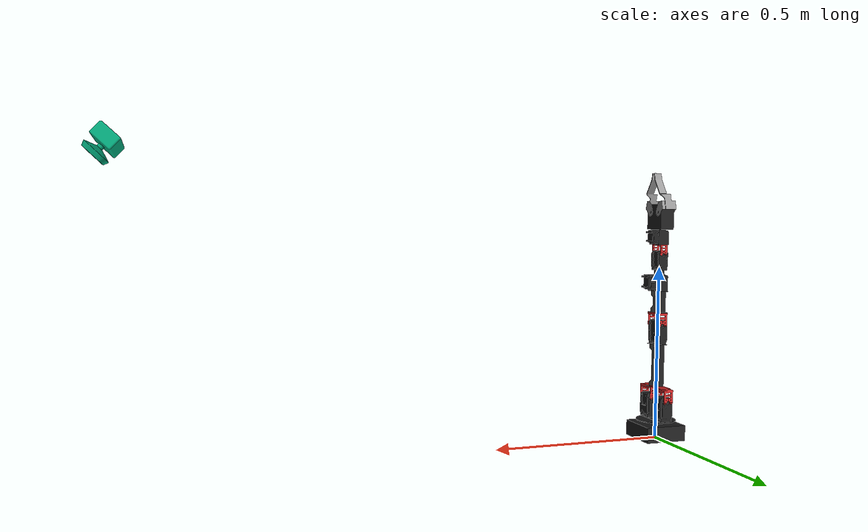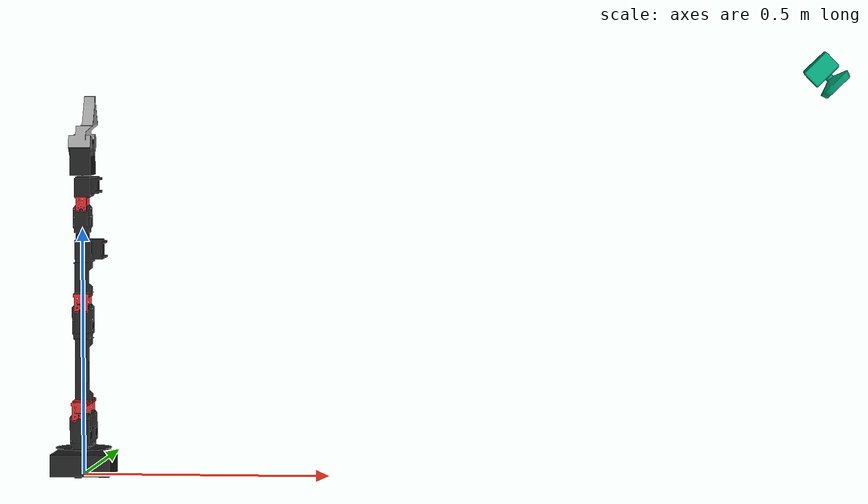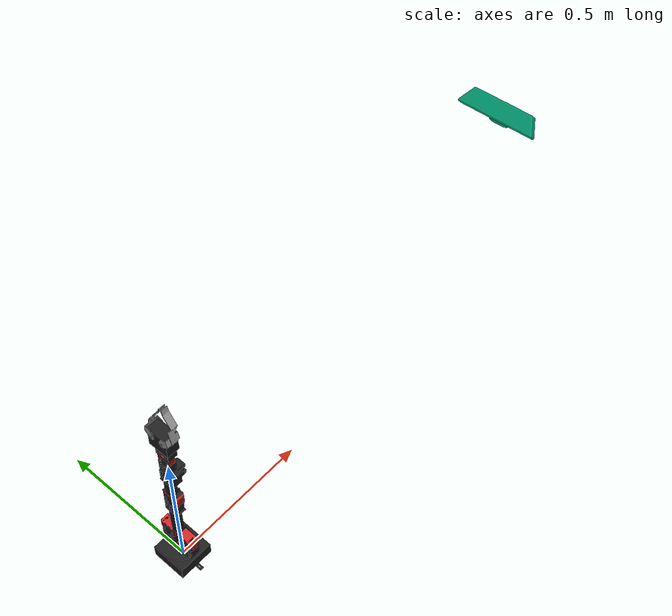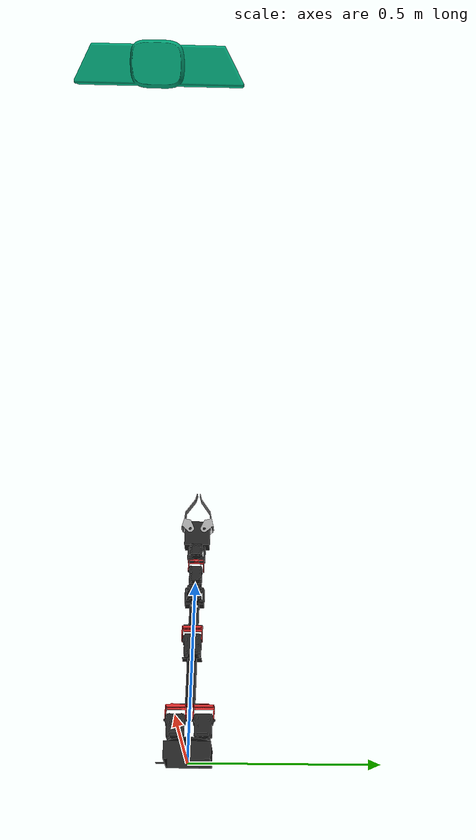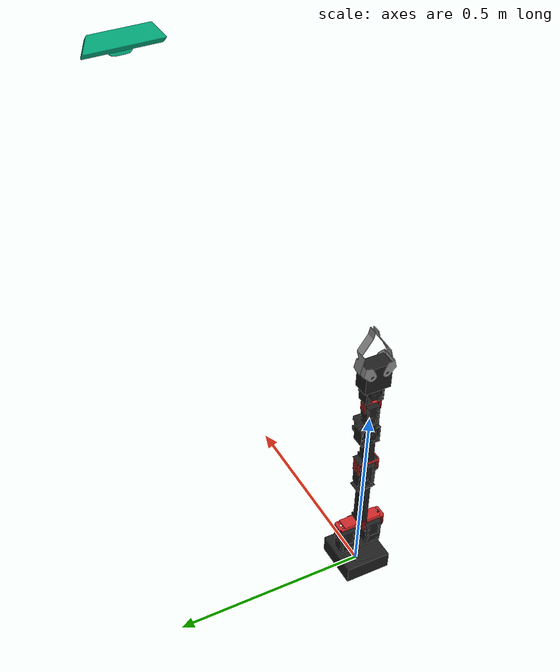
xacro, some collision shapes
<?xml version="1.0" ?>
<robot name="crustcrawler" xmlns:xacro="http://www.ros.org/wiki/xacro">

  <!-- kinect with all frames as defined in turtlebot -->
   <joint name="camera_rgb_joint" type="fixed">
      <origin xyz="0 0.0 0" rpy="0 0 0"/>
      <parent link="camera_link"/>
      <child link="camera_rgb_frame" />
  </joint>
  <link name="camera_rgb_frame"/>
  <joint name="camera_rgb_optical_joint" type="fixed">
      <origin xyz="0 0 0" rpy="-1.5707963267948966 0 -1.5707963267948966" />
      <parent link="camera_rgb_frame" />
      <child link="camera_rgb_optical_frame" />
  </joint>
  <link name="camera_rgb_optical_frame"/>
  <joint name="kinect_joint" type="fixed">
      <origin xyz="1.5 0.0 0.813" rpy="0 0.77 3.14"/>
      <parent link="base"/>
      <child link="camera_link"/>
  </joint>
  <link name="camera_link">
      <visual>
       <origin xyz="0 0 0" rpy="0 0 0"/>
        <geometry>
         <mesh filename="package://crustcrawler_description/meshes/sensors/kinect.dae"/>
        </geometry>
      </visual>
      <collision>
        <origin xyz="0 0 0" rpy="0 0 0"/>
        <geometry>
          <box size="0.07271 0.27794 0.073"/>
        </geometry>
      </collision>
      <inertial>
        <mass value="0.564" />
        <origin xyz="0 0 0" />
        <inertia ixx="0.003881243" ixy="0.0" ixz="0.0"
                 iyy="0.000498940" iyz="0.0"
                 izz="0.003879257" />
      </inertial>
  </link>
  <joint name="camera_depth_joint" type="fixed">
    <origin xyz="0 0.0 0" rpy="0 0 0" />
    <parent link="camera_rgb_frame" />
    <child link="camera_depth_frame" />
  </joint>
  <link name="camera_depth_frame"/>
  <joint name="camera_depth_optical_joint" type="fixed">
    <origin xyz="0 0 0" rpy="-1.5707963267948966 0 -1.5707963267948966" />
    <parent link="camera_depth_frame" />
    <child link="camera_depth_optical_frame" />
  </joint>
  <link name="camera_depth_optical_frame"/>

<!-- Microsoft Kinect / ASUS Xtion PRO Live for simulation -->
    <gazebo reference="camera_link">
      <sensor type="depth" name="camera">
        <always_on>true</always_on>
        <update_rate>20.0</update_rate>
        <camera>
          <horizontal_fov>1.05</horizontal_fov>
          <image>
            <format>B8G8R8</format>
            <width>640</width>
            <height>480</height>
          </image>
          <clip>
            <near>0.05</near>
            <far>8.0</far>
          </clip>
        </camera>
        <plugin name="kinect_camera_controller" filename="libgazebo_ros_openni_kinect.so">
          <baseline>0.2</baseline>
          <alwaysOn>true</alwaysOn>
          <updateRate>10</updateRate>
          <cameraName>camera</cameraName>
          <imageTopicName>rgb/image_rect_color</imageTopicName>
          <depthImageTopicName>depth_registered/sw_registered/image_rect</depthImageTopicName>
          <pointCloudTopicName>depth_registered/sw_registered/points</pointCloudTopicName>
          <cameraInfoTopicName>rgb/camera_info</cameraInfoTopicName>
          <depthImageCameraInfoTopicName>depth_registered/sw_registered/camera_info</depthImageCameraInfoTopicName>
          <frameName>camera_depth_optical_frame</frameName>
          <pointCloudCutoff>0.5</pointCloudCutoff>
          <distortionK1>0.00000001</distortionK1>
          <distortionK2>0.00000001</distortionK2>
          <distortionK3>0.00000001</distortionK3>
          <distortionT1>0.00000001</distortionT1>
          <distortionT2>0.00000001</distortionT2>
          <CxPrime>0</CxPrime>
          <Cx>0</Cx>
          <Cy>0</Cy>
          <focalLength>0</focalLength>
          <hackBaseline>0</hackBaseline>
        </plugin>
      </sensor>
    </gazebo>

  <!-- Crustcrawler Base URDF -->
  <xacro:include filename="$(find crustcrawler_description)/urdf/crustcrawler_arm_test_2.xacro"/>

</robot>

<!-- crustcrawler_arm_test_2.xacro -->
<robot name="crustcrawler" xmlns:xacro="http://www.ros.org/wiki/xacro">

	  <!-- Constants for robot dimensions -->
	  <xacro:property name="PI" value="3.1415926535897931"/>
	  <xacro:property name="mass_1" value="0.125" />
	  <xacro:property name="mass_2" value="0.425" />
	  <xacro:property name="mass_3" value="0.01" />
	  <xacro:property name="mass_4" value="0.037" />
	  <xacro:property name="mass_5" value="0.196" />
	  <xacro:property name="mass_6" value="0.023" />
	  <xacro:property name="mass_7" value="0.187" />
	  <xacro:property name="mass_8" value="0.096" />
	  <xacro:property name="mass_9" value="0.128" />
	  <xacro:property name="mass_10" value="0.15" />
	  <xacro:property name="mass_11" value="0.02" />

	  <xacro:property name="width_1" value="0.14" />
	  <xacro:property name="width_2" value="0.03" />
	  <xacro:property name="width_3" value="0.03" />
	  <xacro:property name="width_4" value="0.032" />
	  <xacro:property name="width_5" value="0.028" />
	  <xacro:property name="width_6" value="0.03" />
	  <xacro:property name="width_7" value="0.05" />
	  <xacro:property name="width_8" value="0.024" />
	  <xacro:property name="width_9" value="0.05" />
	  <xacro:property name="width_10" value="0.036" />
	  <xacro:property name="width_11" value="0.04" />

	  <xacro:property name="length_2" value="0.115" />
	  <xacro:property name="length_3" value="0.13" />
	  <xacro:property name="length_4" value="0.05" />
	  <xacro:property name="length_5" value="0.045" />
	  <xacro:property name="length_6" value="0.05" />
	  <xacro:property name="length_7" value="0.06" />
	  <xacro:property name="length_8" value="0.04" />
	  <xacro:property name="length_9" value="0.05" />
	  <xacro:property name="length_10" value="0.06" />
	  <xacro:property name="length_11" value="0.044" />

	  <xacro:property name="height_1" value="0.06" />
	  <xacro:property name="height_2" value="0.07" />
	  <xacro:property name="height_3" value="0.03" />
	  <xacro:property name="height_4" value="0.126" />
	  <xacro:property name="height_5" value="0.063" />
	  <xacro:property name="height_6" value="0.063" />
	  <xacro:property name="height_7" value="0.048" />
	  <xacro:property name="height_8" value="0.054" />
	  <xacro:property name="height_9" value="0.055" />
	  <xacro:property name="height_10" value="0.053" />
	  <xacro:property name="height_11" value="0.11" />

	    <xacro:include filename="$(find crustcrawler_description)/urdf/materials.urdf.xacro" />
	    <xacro:include filename="$(find crustcrawler_description)/urdf/crustcrawler.gazebo" />

	        <!-- ****** JOINT DEFINITIONS ****** -->
	        <link name="world"/>
		<link name="base"/>
	        <link name="the_gripper">
	      <inertial>
	        <origin rpy="0 0 0" xyz="0 0 0"/>
	        <mass value="0.0001"/>
	        <inertia ixx="0" ixy="0" ixz="0" iyy="0" iyz="0" izz="0.0"/>
	      </inertial>
	    </link>

	        <!-- Arm's base joint -->
	        <joint name="base_joint" type="fixed">
	            <origin xyz="0 0 0" rpy="0 0 0" />
	            <parent link="world"/>
	            <child link="base"/>
	        </joint>

	        <joint name="arm_base_joint" type="fixed">
	            <parent link="base"/>
	            <child link="link_joint_1"/>
	        </joint>

	        <!-- joint 1 -->
	        <joint name="joint_1" type="revolute" >
	            <origin xyz="0 0 0.055" rpy="0 0 0" />
	            <parent link="link_joint_1" />
	            <child link="link_joint_2"/>

	            <axis xyz="0 0 1"/>
	            <limit  lower="-1.8" upper="2.3" effort="6.0" velocity="2.0" />
	        </joint>

	        <!-- joint 2 -->
	        <joint name="joint_2" type="revolute" >
	            <origin xyz="0 -0.06 0.06" rpy="0 0 0" />
	            <parent link="link_joint_2" />
	            <child link="connector_1"/>

	            <axis xyz="0 1 0"/>
	            <limit  lower="-1.6" upper="1.6" effort="15" velocity="2.0" />
	        </joint>

	        <!-- Fixed joint between connector_1 and the first girder -->
	        <joint name="connector_1_girder_1_joint" type="fixed">
	            <origin xyz="-0.0153 0.06 0.036" rpy="0 0 0" />
	            <parent link="connector_1"/>
	            <child link="link_girder_1"/>
	        </joint>

	        <!-- Fixed joint between first girder joint_3 -->
	        <joint name="girder_1_joint_3_joint" type="fixed">
	            <origin xyz="0.0153 0 0.126" rpy="0 0 0" />
	            <parent link="link_girder_1"/>
	            <child link="link_joint_3"/>
	        </joint>

	        <!-- joint 3 -->
	        <joint name="joint_3" type="revolute" >
	            <origin xyz="0 -0.025 0.056" rpy="0 0 0" />
	            <parent link="link_joint_3" />
	            <child link="connector_2"/>

	            <axis xyz="0 -1 0"/>
	            <limit  lower="-1.9" upper="1.9" effort="8.4" velocity="2.0" />
	        </joint>

	        <!-- Fixed joint between connector_2 and link_girder_2 -->
	        <joint name="connector_2_girder_2_joint" type="fixed">
	            <origin xyz="-0.0153 0.025 0.036" rpy="0 0 0" />
	            <parent link="connector_2"/>
	            <child link="link_girder_2"/>
	        </joint>

	        <!-- Fixed joint between second girder joint_4 -->
	        <joint name="girder_2_joint_4_joint" type="fixed">
	            <origin xyz="0.0153 0 0.0635" rpy="0 0 0" />
	            <parent link="link_girder_2"/>
	            <child link="link_joint_4"/>
	        </joint>

	        <!-- joint 4 -->
	        <joint name="joint_4" type="revolute" >
	            <origin xyz="0 0 0.06" rpy="0 0 0" />
	            <parent link="link_joint_4" />
	            <child link="link_joint_5"/>

	            <axis xyz="0 0 1"/>
	            <limit  lower="-3.14" upper="3.14" effort="6.0" velocity="2.0" />
	        </joint>

	        <!-- joint 5 -->
	        <joint name="joint_5" type="revolute" >
	            <origin xyz="0 -0.025 0.044" rpy="0 0 0" />
	            <parent link="link_joint_5" />
	            <child link="connector_3"/>

	            <axis xyz="0 -1 0"/>
	            <limit  lower="-1.6" upper="1.6" effort="2.5" velocity="2.0" />
	        </joint>

	        <!-- Fixed joint between connector_3 and joint_6 -->
	        <joint name="connector_3_joint_6_joint" type="fixed">
	            <origin xyz="0 0.025 0.029" rpy="0 0 0" />
	            <parent link="connector_3"/>
	            <child link="link_joint_6"/>
	        </joint>

	        <!-- joint 6 -->
	        <joint name="joint_6" type="revolute" >
	            <origin xyz="0 0 0.053" rpy="0 0 0" />
	            <parent link="link_joint_6" />
	            <child link="link_gripper_base"/>

	            <axis xyz="0 0 1"/>
	            <limit  lower="-3.140" upper="3.140" effort="2.5" velocity="2.0" />
	        </joint>

	        <!-- Gripper right finger joint -->
	        <joint name="right_finger_joint" type="revolute">
	            <origin xyz="0 -0.02 0.04" rpy="0 0 0" />
	            <parent link="link_gripper_base"/>
	            <child link="link_right_finger" />

	            <axis xyz="1 0 0"/>
	            <!-- From 14 to -45 degrees -->
	            <limit  lower="-0.84" upper="0.84" effort="1.8" velocity="2.0" />
	        </joint>

	        <!-- Gripper left finger joint -->
	        <joint name="left_finger_joint" type="revolute">
	            <origin xyz="0 0.02 0.04" rpy="0 0 0" />
	            <parent link="link_gripper_base"/>
	            <child link="link_left_finger" />

	            <axis xyz="1 0 0"/>
	            <!-- From 14 to -45 degrees -->
	            <limit  lower="-0.84" upper="0.84" effort="1.8" velocity="2.0" />
	        </joint>

	        <joint name="crustcrawler_endpoint" type="fixed">
	      <origin rpy="0 0 0" xyz="0 0 0.17"/>
	      <parent link="link_gripper_base"/>
	      <child link="the_gripper"/>
	    </joint>

	        <!-- ****** LINK DEFINITIONS ****** -->
	        <link name="link_joint_1">
	            <visual>
	                <origin xyz="0 0 0" rpy="0 0 0" />
	                <geometry>
	                    <mesh filename="package://crustcrawler_description/meshes/collada/joint_1.dae"/>
	                </geometry>
	            </visual>

	            <collision>
	                <origin xyz="0 0 ${height_1/2.0}" rpy="0 0 0" />
	                <geometry>
	                    <box size=" 0.118 0.118 0.04 "></box>
	                </geometry>
	            </collision>

			<inertial>
	      			<origin xyz="0 0 0.043" rpy="0 0 0"/>
	      <mass value="${mass_1}"/>
	      <inertia
		  ixx="${mass_1 / 12.0 * (width_1*width_1 + height_1*height_1)}" ixy="0.0" ixz="0.0"
		  iyy="${mass_1 / 12.0 * (height_1*height_1 + width_1*width_1)}" iyz="0.0"
		  izz="${mass_1 / 12.0 * (width_1*width_1 + width_1*width_1)}"/>
	    		</inertial>
	        </link>

	        <link name="link_joint_2">

	            <visual>
	                <origin xyz="0 0 0" rpy="0 0 0" />
	                <geometry>
	                    <mesh filename="package://crustcrawler_description/meshes/collada/joint_2.dae"/>
	                </geometry>
	            </visual>

	            <collision>
	                <origin xyz="0 0 ${height_2/2.0}" rpy="0 0 0" />
	                <geometry>
	                    <box size=" 0.05 0.133 0.076 "></box>
	                </geometry>
	            </collision>

			<inertial>
	      			<origin xyz="0.112 0 0 " rpy="0 0 0"/>
	      <mass value="${mass_2}"/>
	      <inertia
		  ixx="${mass_2 / 12.0 * (width_2*width_2 + height_2*height_2)}" ixy="0.0" ixz="0.0"
		  iyy="${mass_2 / 12.0 * (height_2*height_2 + length_2*length_2)}" iyz="0.0"
		  izz="${mass_2 / 12.0 * (width_2*width_2 + length_2*length_2)}"/>
	    		</inertial>
	        </link>

	        <link name="connector_1">
	            <visual>
	                <origin xyz="0 0.06 0" rpy="0 0 0" />
	                <geometry>
	                    <mesh filename="package://crustcrawler_description/meshes/collada/connecter_joint_2_girder_1.dae"/>
	                </geometry>
	            </visual>

	            <collision>
	                <origin xyz="0 0.06 ${height_3/2.0}" rpy="0 0 0" />
	                <geometry>
	                    <box size=" 0.05 0.133 0.043 "></box>
	                </geometry>
	            </collision>

	    <inertial>
	      <origin xyz="0 0 ${height_3}" rpy="0 0 0"/>
	      <mass value="${mass_3}"/>
	      <inertia
		  ixx="${mass_3 / 12.0 * (width_3*width_3 + height_3*height_3)}" ixy="0.0" ixz="0.0"
		  iyy="${mass_3 / 12.0 * (height_3*height_3 + width_3*width_3)}" iyz="0.0"
		  izz="${mass_3 / 12.0 * (width_3*width_3 + width_3*width_3)}"/>
	    </inertial>
	        </link>

	  <link name="link_girder_1">
	            <visual>
	                <origin xyz="0 0 0" rpy="0 0 0" />
	                <geometry>
	                    <mesh filename="package://crustcrawler_description/meshes/collada/link_50.dae"/>
	                </geometry>
	            </visual>

	            <collision>
	                <origin xyz="0.0153 0 ${height_4/2.0}" rpy="0 0 0" />
	                <geometry>
	                    <box size=" 0.035 0.035 0.13 "></box>
	                </geometry>
	            </collision>

			<inertial>
	      			<origin xyz="0.0785 0 0 " rpy="0 0 0"/>
	      <mass value="${mass_4}"/>
	      <inertia
		  ixx="${mass_4 / 12.0 * (width_4*width_4 + height_4*height_4)}" ixy="0.0" ixz="0.0"
		  iyy="${mass_4 / 12.0 * (height_4*height_4 + width_4*width_4)}" iyz="0.0"
		  izz="${mass_4 / 12.0 * (width_4*width_4 + width_4*width_4)}"/>
	    		</inertial>
	        </link>

	        <link name="link_joint_3">
	            <visual>
	                <origin xyz="0 0 0" rpy="0 0 0" />
	                <geometry>
	                    <mesh filename="package://crustcrawler_description/meshes/collada/joint_3.dae"/>
	                </geometry>
	            </visual>

	            <collision>
	                <origin xyz="0 0 ${height_5/2.0}" rpy="0 0 0" />
	                <geometry>
	                    <box size=" 0.05 0.09 0.073 "></box>
	                </geometry>
	            </collision>

			<inertial>
	      			<origin xyz="0.0 0 0.039 " rpy="0 0 0"/>
	      <mass value="${mass_5}"/>
	      <inertia
		  ixx="${mass_5 / 12.0 * (width_5*width_5 + height_5*height_5)}" ixy="0.0" ixz="0.0"
		  iyy="${mass_5 / 12.0 * (height_5*height_5 + width_5*width_5)}" iyz="0.0"
		  izz="${mass_5 / 12.0 * (width_5*width_5 + width_5*width_5)}"/>
	    		</inertial>
	        </link>

	        <link name="connector_2">
	            <visual>
	                <origin xyz="0 0.022 0" rpy="0 0 0" />
	                <geometry>
	                    <mesh filename="package://crustcrawler_description/meshes/collada/connecter_joint_3_girder_2.dae"/>
	                </geometry>
	            </visual>

	            <collision>
	                <origin xyz="0 0.022 ${height_3/2.0}" rpy="0 0 0" />
	                <geometry>
	                    <box size=" 0.05 0.09 0.043 "></box>
	                </geometry>
	            </collision>

	    <inertial>
	      <origin xyz="0 0 ${height_3}" rpy="0 0 0"/>
	      <mass value="${mass_3}"/>
	      <inertia
		  ixx="${mass_3 / 12.0 * (width_3*width_3 + height_3*height_3)}" ixy="0.0" ixz="0.0"
		  iyy="${mass_3 / 12.0 * (height_3*height_3 + width_3*width_3)}" iyz="0.0"
		  izz="${mass_3 / 12.0 * (width_3*width_3 + width_3*width_3)}"/>
	    </inertial>
	        </link>

	        <link name="link_girder_2">
	            <visual>
	                <origin xyz="0 0 0" rpy="0 0 0" />
	                <geometry>
	                    <mesh filename="package://crustcrawler_description/meshes/collada/link_25.dae"/>
	                </geometry>
	            </visual>

	            <collision>
	                <origin xyz="0.0153 0 ${height_6/2.0}" rpy="0 0 0" />
	                <geometry>
	                    <box size=" 0.035 0.035 0.065 "></box>
	                </geometry>
	            </collision>

			<inertial>
	      			<origin xyz="0.0325 0  0" rpy="0 0 0"/>
	      <mass value="${mass_6}"/>
	      <inertia
		  ixx="${mass_6 / 12.0 * (width_6*width_6 + height_6*height_6)}" ixy="0.0" ixz="0.0"
		  iyy="${mass_6 / 12.0 * (height_6*height_6 + width_6*width_6)}" iyz="0.0"
		  izz="${mass_6 / 12.0 * (width_6*width_6 + width_6*width_6)}"/>
	    		</inertial>
	        </link>

	        <link name="link_joint_4">
	            <visual>
	                <origin xyz="0 0 0" rpy="0 0 0" />
	                <geometry>
	                    <mesh filename="package://crustcrawler_description/meshes/collada/joint_4.dae"/>
	                </geometry>
	            </visual>

	            <collision>
	                <origin xyz="-0.02 0 ${height_7/2.0}" rpy="0 0 0" />
	                <geometry>
	                    <box size=" 0.09 0.07 0.07 "></box>
	                </geometry>
	            </collision>

			<inertial>
	      			<origin xyz="0.0325 0  0" rpy="0 0 0"/>
	      <mass value="${mass_7}"/>
	      <inertia
		  ixx="${mass_7 / 12.0 * (width_7*width_7 + height_7*height_7)}" ixy="0.0" ixz="0.0"
		  iyy="${mass_7 / 12.0 * (height_7*height_7 + length_7*length_7)}" iyz="0.0"
		  izz="${mass_7 / 12.0 * (width_7*width_7 + length_7*length_7)}"/>
	    		</inertial>
	        </link>

	        <link name="link_joint_5">
	            <visual>
	                <origin xyz="0 0 0" rpy="0 0 0" />
	                <geometry>
	                    <mesh filename="package://crustcrawler_description/meshes/collada/joint_5.dae"/>
	                </geometry>
	            </visual>

	            <collision>
	                <origin xyz="0 0 ${height_8/2.0}" rpy="0 0 0" />
	                <geometry>
	                    <box size=" 0.04 0.05 0.06 "></box>
	                </geometry>
	            </collision>

	    <inertial>
	      <origin xyz="0 0 ${height_8}" rpy="0 0 0"/>
	      <mass value="${mass_8}"/>
	      <inertia
		  ixx="${mass_8 / 12.0 * (width_8*width_8 + height_8*height_8)}" ixy="0.0" ixz="0.0"
		  iyy="${mass_8 / 12.0 * (height_8*height_8 + length_8*length_8)}" iyz="0.0"
		  izz="${mass_8 / 12.0 * (width_8*width_8 + length_8*length_8)}"/>
	    </inertial>
	        </link>

	        <link name="connector_3">
	            <visual>
	                <origin xyz="0 0.025 0" rpy="0 0 0" />
	                <geometry>
	                    <mesh filename="package://crustcrawler_description/meshes/collada/connecter_joint_5_joint_6.dae"/>
	                </geometry>
	            </visual>

	            <collision>
	                <origin xyz="0 0.025 ${height_3/2.0}" rpy="0 0 0" />
	                <geometry>
	                    <box size=" 0.04 0.05 0.06 "></box>
	                </geometry>
	            </collision>

			<inertial>
	      			<origin xyz="0.0325 0  0" rpy="0 0 0"/>
	      <mass value="${mass_3}"/>
	      <inertia
		  ixx="${mass_3 / 12.0 * (width_3*width_3 + height_3*height_3)}" ixy="0.0" ixz="0.0"
		  iyy="${mass_3 / 12.0 * (height_3*height_3 + width_3*width_3)}" iyz="0.0"
		  izz="${mass_3 / 12.0 * (width_3*width_3 + width_3*width_3)}"/>
	    		</inertial>
	        </link>

	        <link name="link_joint_6">
	            <visual>
	                <origin xyz="0 0 0" rpy="0 0 0" />
	                <geometry>
	                    <mesh filename="package://crustcrawler_description/meshes/collada/joint_6.dae"/>
	                </geometry>
	            </visual>

	            <collision>
	                <origin xyz="-0.01 0 ${height_9/2.0}" rpy="0 0 0" />
	                <geometry>
	                    <box size=" 0.06 0.05 0.06 "></box>
	                </geometry>
	            </collision>

			<inertial>
	      			<origin xyz="0.0325 0  0" rpy="0 0 0"/>
	      <mass value="${mass_9}"/>
	      <inertia
		  ixx="${mass_9 / 12.0 * (width_9*width_9 + height_9*height_9)}" ixy="0.0" ixz="0.0"
		  iyy="${mass_9 / 12.0 * (height_9*height_9 + length_9*length_9)}" iyz="0.0"
		  izz="${mass_9 / 12.0 * (width_9*width_9 + length_9*length_9)}"/>
	    		</inertial>
	        </link>

	        <link name="link_gripper_base">
	            <visual>
	                <origin xyz="0 0 0" rpy="0 0 0" />
	                <geometry>
	                    <mesh filename="package://crustcrawler_description/meshes/collada/gripper_base.dae"/>
	                </geometry>
	            </visual>

	            <collision>
	                <origin xyz="0 0 ${height_10/2.0}" rpy="0 0 0" />
	                <geometry>
	                    <box size=" 0.042 0.07 0.072 "></box>
	                </geometry>
	            </collision>
			<inertial>
	      			<origin xyz="0 0 0.035 " rpy="0 0 0"/>
	      <mass value="${mass_10}"/>
	      <inertia
		  ixx="${mass_10 / 12.0 * (width_10*width_10 + height_10*height_10)}" ixy="0.0" ixz="0.0"
		  iyy="${mass_10 / 12.0 * (height_10*height_10 + length_10*length_10)}" iyz="0.0"
		  izz="${mass_10 / 12.0 * (width_10*width_10 + length_10*length_10)}"/>
	    		</inertial>
	        </link>

	        <link name="link_right_finger">
	            <visual>
	                <origin xyz="0 0 0" rpy="0 0 0" />
	                <geometry>
	                    <mesh filename="package://crustcrawler_description/meshes/collada/arm_right_finger.dae"/>
	                </geometry>
	            </visual>

	            <collision>
	                <origin xyz="0 0 ${height_11/2.0}" rpy="0 0 0" />
	                <geometry>
	                    <box size=" 0.06 0.034 0.11 "></box>
	                </geometry>
	            </collision>

	    <inertial>
	      <origin xyz="0 0 ${height_11/2.0}" rpy="0 0 0"/>
	      <mass value="${mass_11}"/>
	      <inertia
		  ixx="${mass_11 / 12.0 * (width_11*width_11 + height_11*height_11)}" ixy="0.0" ixz="0.0"
		  iyy="${mass_11 / 12.0 * (height_11*height_11 + length_11*length_11)}" iyz="0.0"
		  izz="${mass_11 / 12.0 * (width_11*width_11 + length_11*length_11)}"/>
	    </inertial>
	        </link>

	        <link name="link_left_finger">
	            <visual>
	                <origin xyz="0 0 0" rpy="0 0 0" />
	                <geometry>
	                    <mesh filename="package://crustcrawler_description/meshes/collada/arm_left_finger.dae"/>
	                </geometry>
	            </visual>

	            <collision>
	                <origin xyz="0 0 ${height_11/2.0}" rpy="0 0 0" />
	                <geometry>
	                    <box size=" 0.06 0.034 0.11 "></box>
	                </geometry>
	            </collision>

	    <inertial>
	      <origin xyz="0 0 ${height_11/2.0}" rpy="0 0 0"/>
	      <mass value="${mass_11}"/>
	      <inertia
		  ixx="${mass_11 / 12.0 * (width_11*width_11 + height_11*height_11)}" ixy="0.0" ixz="0.0"
		  iyy="${mass_11 / 12.0 * (height_11*height_11 + length_11*length_11)}" iyz="0.0"
		  izz="${mass_11 / 12.0 * (width_11*width_11 + length_11*length_11)}"/>
	    </inertial>
	        </link>

	  <transmission name="joint_1_trans">
	    <type>transmission_interface/SimpleTransmission</type>
	    <joint name="joint_1">
	      <hardwareInterface>PositionJointInterface</hardwareInterface>
	    </joint>
	    <actuator name="joint_1_motor">
	      <hardwareInterface>PositionJointInterface</hardwareInterface>
	      <mechanicalReduction>1</mechanicalReduction>
	    </actuator>
	  </transmission>

	  <transmission name="joint_2_trans">
	    <type>transmission_interface/SimpleTransmission</type>
	    <joint name="joint_2">
	      <hardwareInterface>PositionJointInterface</hardwareInterface>
	    </joint>
	    <actuator name="joint_2_motor">
	      <hardwareInterface>PositionJointInterface</hardwareInterface>
	      <mechanicalReduction>1</mechanicalReduction>
	    </actuator>
	  </transmission>

	  <transmission name="joint_3_trans">
	    <type>transmission_interface/SimpleTransmission</type>
	    <joint name="joint_3">
	      <hardwareInterface>PositionJointInterface</hardwareInterface>
	    </joint>
	    <actuator name="joint_3_motor">
	      <hardwareInterface>PositionJointInterface</hardwareInterface>
	      <mechanicalReduction>1</mechanicalReduction>
	    </actuator>
	  </transmission>

	  <transmission name="joint_4_trans">
	    <type>transmission_interface/SimpleTransmission</type>
	    <joint name="joint_4">
	      <hardwareInterface>PositionJointInterface</hardwareInterface>
	    </joint>
	    <actuator name="joint_4_motor">
	      <hardwareInterface>PositionJointInterface</hardwareInterface>
	      <mechanicalReduction>1</mechanicalReduction>
	    </actuator>
	  </transmission>

	  <transmission name="joint_5_trans">
	    <type>transmission_interface/SimpleTransmission</type>
	    <joint name="joint_5">
	      <hardwareInterface>PositionJointInterface</hardwareInterface>
	    </joint>
	    <actuator name="joint_5_motor">
	      <hardwareInterface>PositionJointInterface</hardwareInterface>
	      <mechanicalReduction>1</mechanicalReduction>
	    </actuator>
	  </transmission>

	  <transmission name="joint_6_trans">
	    <type>transmission_interface/SimpleTransmission</type>
	    <joint name="joint_6">
	      <hardwareInterface>PositionJointInterface</hardwareInterface>
	    </joint>
	    <actuator name="joint_6_motor">
	      <hardwareInterface>PositionJointInterface</hardwareInterface>
	      <mechanicalReduction>1</mechanicalReduction>
	    </actuator>
	  </transmission>

	  <transmission name="right_finger_joint_trans">
	    <type>transmission_interface/SimpleTransmission</type>
	    <joint name="right_finger_joint">
	      <hardwareInterface>PositionJointInterface</hardwareInterface>
	    </joint>
	    <actuator name="right_finger_joint_motor">
	      <hardwareInterface>PositionJointInterface</hardwareInterface>
	      <mechanicalReduction>1</mechanicalReduction>
	    </actuator>
	  </transmission>

	  <transmission name="left_finger_joint_trans">
	    <type>transmission_interface/SimpleTransmission</type>
	    <joint name="left_finger_joint">
	      <hardwareInterface>PositionJointInterface</hardwareInterface>
	    </joint>
	    <actuator name="left_finger_joint_motor">
	      <hardwareInterface>PositionJointInterface</hardwareInterface>
	      <mechanicalReduction>1</mechanicalReduction>
	    </actuator>
	  </transmission>
</robot>

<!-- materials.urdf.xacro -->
<robot>

    <material name="Black">
        <color rgba="0.0 0.0 0.0 1.0"/>
    </material>

    <material name="Blue">
        <color rgba="0.0 0.0 0.8 1.0"/>
    </material>

    <material name="Green">
        <color rgba="0.0 0.8 0.0 1.0"/>
    </material>

    <material name="Grey">
        <color rgba="0.7 0.7 0.7 1.0"/>
    </material>

    <material name="Grey2">
        <color rgba="0.9 0.9 0.9 1.0"/>
    </material>

    <material name="Red">
        <color rgba="0.8 0.0 0.0 1.0"/>
    </material>

    <material name="White">
        <color rgba="1.0 1.0 1.0 1.0"/>
    </material>

    <material name="GunMetalBrushedAluminum">
        <texture filename="package://crustcrawler_description/Media/materials/textures/gun_metal_brushed_aluminum.jpg" />
    </material>

</robot>
